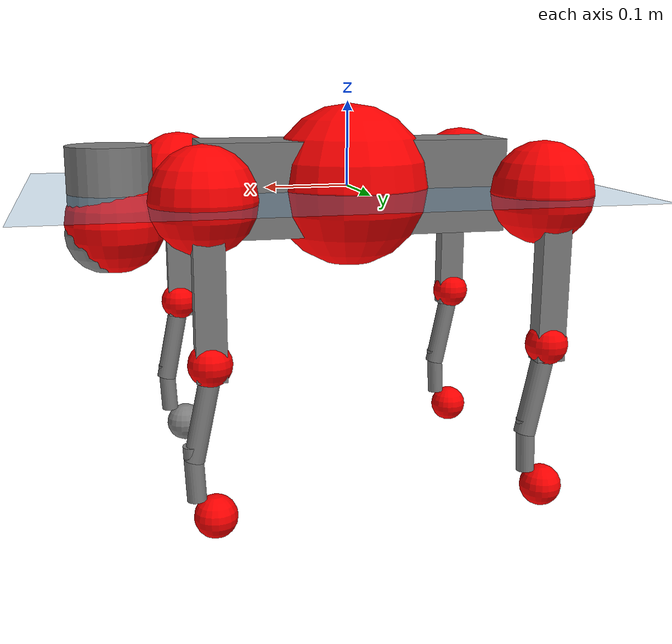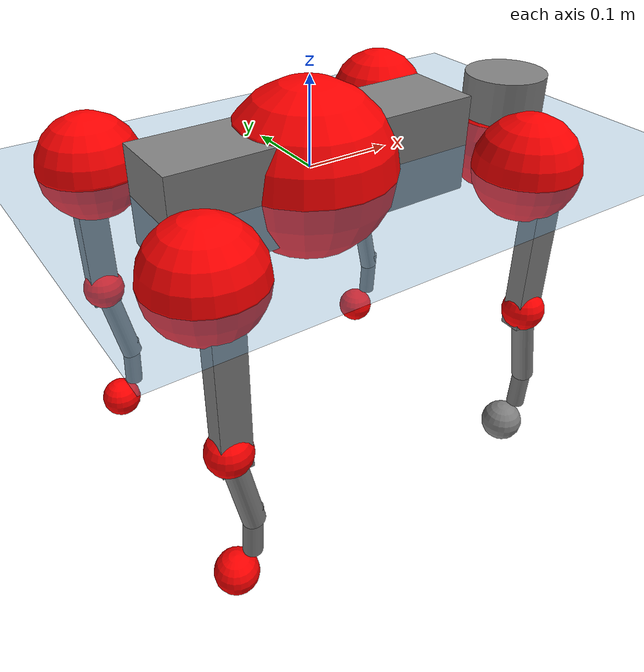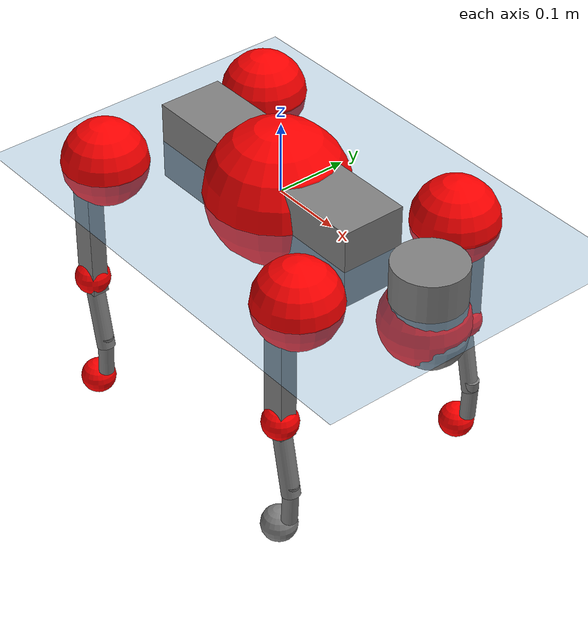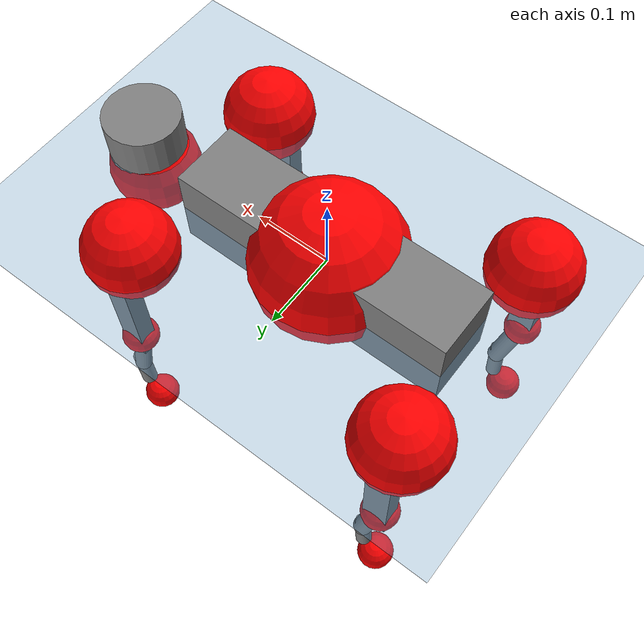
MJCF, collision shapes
<mujoco model="go2">
  <compiler angle="radian" assetdir="assets" balanceinertia="true" inertiafromgeom="false"/>

  <option timestep="0.005" density="1.2" viscosity="2e-05"/>

  <size nkey="1"/>

  <visual>
    <quality shadowsize="8192"/>
    <map shadowclip="0.5"/>
  </visual>

  <default>
    <default class="/">
      <geom contype="0" conaffinity="0" group="1" solref="-1000 -80"/>
      <site size="0.01 0.005 0.005" group="5"/>
      <general forcelimited="true" biastype="affine" gainprm="20" biasprm="0 -20 -0.5"/>
      <default class="go2">
        <joint armature="0.01" damping="0.01" frictionloss="0.2"/>
        <geom condim="1" margin="0.001"/>
        <default class="visual">
          <geom type="mesh" group="2"/>
        </default>
        <default class="collision">
          <geom group="3"/>
          <default class="foot">
            <geom size="0.022 0 0" condim="6" priority="1" friction="0.8 0.02 0.01" solimp="0.015 1 0.022"/>
          </default>
        </default>
        <default class="reward_collision_sphere">
          <geom group="5" rgba="1 0 0 1"/>
        </default>
      </default>
    </default>
  </default>

  <asset>
    <texture type="skybox" colorspace="auto" name="//unnamed_texture_0" builtin="gradient" rgb1="0.95 0.95 0.95" rgb2="0.95 0.95 0.95" width="100" height="600"/>
    <texture type="2d" colorspace="auto" name="texplane" builtin="checker" rgb1="0.345 0.575 0.748" rgb2="0.345 0.575 0.748" markrgb="1 1 1" width="512" height="512"/>
    <material name="MatPlane" class="/" texture="texplane" texuniform="true" texrepeat="2 2" specular="0.9"/>
    <material name="metal" class="/" rgba="0.9 0.95 0.95 1"/>
    <material name="black" class="/" rgba="0 0 0 1"/>
    <material name="white" class="/"/>
    <material name="gray" class="/" rgba="0.671705 0.692426 0.77427 1"/>
    <mesh name="base_0" class="/" file="base_0.obj"/>
    <mesh name="base_1" class="/" file="base_1.obj"/>
    <mesh name="base_2" class="/" file="base_2.obj"/>
    <mesh name="base_3" class="/" file="base_3.obj"/>
    <mesh name="base_4" class="/" file="base_4.obj"/>
    <mesh name="hip_0" class="/" file="hip_0.obj"/>
    <mesh name="hip_1" class="/" file="hip_1.obj"/>
    <mesh name="thigh_0" class="/" file="thigh_0.obj"/>
    <mesh name="thigh_1" class="/" file="thigh_1.obj"/>
    <mesh name="thigh_mirror_0" class="/" file="thigh_mirror_0.obj"/>
    <mesh name="thigh_mirror_1" class="/" file="thigh_mirror_1.obj"/>
    <mesh name="calf_0" class="/" file="calf_0.obj"/>
    <mesh name="calf_1" class="/" file="calf_1.obj"/>
    <mesh name="calf_mirror_0" class="/" file="calf_mirror_0.obj"/>
    <mesh name="calf_mirror_1" class="/" file="calf_mirror_1.obj"/>
    <mesh name="foot" class="/" file="foot.obj"/>
  </asset>

  <worldbody>
    <geom name="floor" class="/" size="100 100 0.125" type="plane" group="0" material="MatPlane"/>
    <light name="toplight_shadow" class="/" pos="0 0 5" dir="0.0990148 0.0990148 -0.990148" type="directional" ambient="0.04 0.04 0.04" diffuse="0.55 0.55 0.55" specular="0.12 0.12 0.12"/>
    <light name="toplight_fill" class="/" pos="0 0 5" dir="0.0990148 0.0990148 -0.990148" type="directional" castshadow="false" ambient="0.04 0.04 0.04" diffuse="0.3 0.3 0.3" specular="0.08 0.08 0.08"/>
    <body name="trunk" childclass="go2" pos="-0.00272284 -0.00193181 0.000321613" quat="0.999999 0.000386092 -0.000940558 -0.000702693">
      <inertial pos="0.0180386 -0.000173496 -0.00482445" quat="0.000745908 0.71442 -0.00206984 0.699713" mass="6.21043" diaginertia="0.102098 0.165451 0.00874347"/>
      <joint name="//unnamed_joint_0" type="free" armature="0" damping="0" frictionloss="0"/>
      <geom name="//unnamed_geom_1" class="visual" material="black" mesh="base_0"/>
      <geom name="//unnamed_geom_2" class="visual" material="black" mesh="base_1"/>
      <geom name="//unnamed_geom_3" class="visual" material="black" mesh="base_2"/>
      <geom name="//unnamed_geom_4" class="visual" material="white" mesh="base_3"/>
      <geom name="//unnamed_geom_5" class="visual" material="gray" mesh="base_4"/>
      <geom name="trunk_1" class="collision" size="0.18245 0.0453458 0.0552879" type="box"/>
      <geom name="trunk_2" class="collision" size="0.0484982 0.0436483" pos="0.281936 0 0.00809594" type="cylinder"/>
      <geom name="trunk_3" class="collision" size="0.0455883" pos="0.28985 0 -0.0485756"/>
      <geom name="//unnamed_geom_9" class="reward_collision_sphere" size="0.0969963"/>
      <geom name="//unnamed_geom_10" class="reward_collision_sphere" size="0.0581978" pos="0.27699 0 -0.0364317"/>
      <site name="imu" pos="-0.0227267 -0.0026126 0.0392907" size="0.00969963"/>
      <camera name="track" pos="0 -2.22209 0" quat="0.707107 0.707107 0 0" mode="trackcom"/>
      <camera name="ego_camera" pos="0.308646 0 0.0364317" quat="-0.5 -0.5 0.5 0.5"/>
      <body name="FL_hip" pos="0.189605 0.0503165 0.00277139" quat="0.999999 0.000124315 -2.56441e-05 -0.00125405">
        <inertial pos="-0.00797308 0.00188557 -0.00100033" quat="0.498884 0.499424 0.504301 0.497364" mass="0.64346" diaginertia="0.000874006 0.00100695 0.000174388"/>
        <joint name="FL_hip_joint" pos="0 0 0" axis="0.999987 -0.0047082 -0.00176609" stiffness="0.00336634" range="-1.05521 0.994719" armature="0.0107989" damping="0" frictionloss="0.193253"/>
        <geom name="//unnamed_geom_11" class="visual" material="metal" mesh="hip_0"/>
        <geom name="//unnamed_geom_12" class="visual" material="gray" mesh="hip_1"/>
        <geom name="//unnamed_geom_13" class="collision" size="0.0446183 0.0193993" pos="0 0.0888836 0" quat="0.707107 0.707107 0 0" type="cylinder"/>
        <geom name="//unnamed_geom_14" class="reward_collision_sphere" size="0.0581978" pos="0 0.0777732 0"/>
        <body name="FL_thigh" pos="-7.14972e-05 0.105168 0.0026201" quat="1 -8.28437e-05 0.000108594 -0.000437134">
          <inertial pos="-0.00101997 -0.0249054 -0.0237335" quat="0.829583 0.084526 -0.0185526 0.551636" mass="1.06139" diaginertia="0.00561585 0.00972869 0.000305985"/>
          <joint name="FL_thigh_joint" pos="0 0 0" axis="-0.0075845 0.99997 -0.00142988" stiffness="0.0126463" range="-1.61679 3.53993" armature="0.0108173" damping="0" frictionloss="0.198738"/>
          <geom name="//unnamed_geom_15" class="visual" material="metal" mesh="thigh_0"/>
          <geom name="//unnamed_geom_16" class="visual" material="gray" mesh="thigh_1"/>
          <geom name="//unnamed_geom_17" class="collision" size="0.103301 0.011882 0.0164894" pos="0 0 -0.0862217" quat="0.707107 0 0.707107 0" type="box"/>
          <body name="FL_calf" pos="0.000526779 -0.00159515 -0.17289" quat="1 0.000576123 0.000238865 -0.000379153">
            <inertial pos="0.00745645 0.000417873 -0.116471" quat="0.707216 0.00962257 -0.0140593 0.706792" mass="0.217762" diaginertia="0.00142646 0.00249848 1.81042e-05"/>
            <joint name="FL_calf_joint" pos="0 0 0" axis="-0.00670978 0.999977 -0.00127614" range="-2.71752 -0.887581" armature="0.00921593" damping="0" frictionloss="0.199978"/>
            <geom name="//unnamed_geom_18" class="visual" material="gray" mesh="calf_0"/>
            <geom name="//unnamed_geom_19" class="visual" material="black" mesh="calf_1"/>
            <geom name="FL_calf0" class="collision" size="0.0116396 0.0581978" pos="0.007914 0 -0.0485756" quat="0.994493 0 -0.104807 0" type="cylinder"/>
            <geom name="//unnamed_geom_21" class="collision" size="0.0106696 0.0315238" pos="0.019785 0 -0.11982" quat="0.999688 0 0.0249974 0" type="cylinder"/>
            <geom name="//unnamed_geom_22" class="visual" pos="0 0 -0.172443" quat="1 0 0 0" material="black" mesh="foot"/>
            <geom name="FL_foot" class="foot" size="0.0165307" pos="-0.0019785 0 -0.172443"/>
            <geom name="//unnamed_geom_24" class="reward_collision_sphere" size="0.0242491"/>
            <geom name="//unnamed_geom_25" class="reward_collision_sphere" size="0.0242491" pos="-0.0019785 0 -0.172443"/>
            <site name="FL_foot" class="foot" pos="-0.0019785 0 -0.172443" size="0.00969963"/>
          </body>
        </body>
      </body>
      <body name="FR_hip" pos="0.192641 -0.0488285 -0.000112907" quat="1 8.71461e-05 -0.000233438 9.34492e-05">
        <inertial pos="-0.00265952 -0.00313468 -0.000485519" quat="0.499954 0.503589 0.499851 0.496581" mass="0.652427" diaginertia="0.000865331 0.0010467 0.000167682"/>
        <joint name="FR_hip_joint" pos="0 0 0" axis="1 -0.000663293 0.000342264" range="-1.02771 1.04518" armature="0.00841012" damping="0.0163331" frictionloss="0.220403"/>
        <geom name="//unnamed_geom_26" class="visual" pos="0 2.62612e-09 1.1264e-07" quat="4.63268e-05 1 0 0" material="metal" mesh="hip_0"/>
        <geom name="//unnamed_geom_27" class="visual" pos="0 4.25725e-09 -2.78601e-07" quat="4.63268e-05 1 0 0" material="gray" mesh="hip_1"/>
        <geom name="//unnamed_geom_28" class="collision" size="0.0446183 0.0193993" pos="0 -0.0888836 0" quat="0.707107 0.707107 0 0" type="cylinder"/>
        <geom name="//unnamed_geom_29" class="reward_collision_sphere" size="0.0581978" pos="0 -0.0777732 0"/>
        <body name="FR_thigh" pos="0.000880717 -0.104569 0.00314227" quat="0.999999 -0.000232423 0.00105391 -0.000893343">
          <inertial pos="-0.00551358 0.0222278 -0.0254605" quat="0.553186 -0.0183254 0.0831931 0.828691" mass="1.02374" diaginertia="0.00566284 0.00995148 0.000298271"/>
          <joint name="FR_thigh_joint" pos="0 0 0" axis="0.00173714 -0.999998 0.00124377" range="-3.4724 1.57463" armature="0.00967335" damping="0.017951" frictionloss="0.193775"/>
          <geom name="//unnamed_geom_30" class="visual" material="metal" mesh="thigh_mirror_0"/>
          <geom name="//unnamed_geom_31" class="visual" material="gray" mesh="thigh_mirror_1"/>
          <geom name="//unnamed_geom_32" class="collision" size="0.103301 0.011882 0.0164894" pos="0 0 -0.0862217" quat="0.707107 0 0.707107 0" type="box"/>
          <body name="FR_calf" pos="0.00144894 -0.00105485 -0.171668" quat="1 3.02711e-05 -0.000115126 -2.85267e-05">
            <inertial pos="0.00699112 0.000759443 -0.113829" quat="0.703226 -0.00582207 -0.00117151 0.710942" mass="0.224282" diaginertia="0.00150373 0.00249008 1.91929e-05"/>
            <joint name="FR_calf_joint" pos="0 0 0" axis="-0.0107342 -0.999942 0.00051088" range="0.838729 2.71776" armature="0.00988789" damping="0.0152342" frictionloss="0.183807"/>
            <geom name="//unnamed_geom_33" class="visual" material="gray" mesh="calf_mirror_0"/>
            <geom name="//unnamed_geom_34" class="visual" material="black" mesh="calf_mirror_1"/>
            <geom name="FR_calf0" class="collision" size="0.0126095 0.0581978" pos="0.00989251 0 -0.0485756" quat="0.995004 0 -0.0998334 0" type="cylinder"/>
            <geom name="//unnamed_geom_36" class="collision" size="0.0106696 0.0315238" pos="0.019785 0 -0.11982" quat="0.999688 0 0.0249974 0" type="cylinder"/>
            <geom name="//unnamed_geom_37" class="visual" pos="0 0 -0.172443" quat="1 0 0 0" material="black" mesh="foot"/>
            <geom name="FR_foot" class="foot" size="0.0245794" pos="-0.0019785 0 -0.172443"/>
            <geom name="//unnamed_geom_39" class="reward_collision_sphere" size="0.0242491"/>
            <geom name="//unnamed_geom_40" class="reward_collision_sphere" size="0.0242491" pos="-0.0019785 0 -0.172443"/>
            <site name="FR_foot" class="foot" pos="-0.0019785 0 -0.172443" size="0.00969963"/>
          </body>
        </body>
      </body>
      <body name="RL_hip" pos="-0.191023 0.0514119 0.00146033" quat="0.999999 -0.000486007 -0.000430637 -0.000991406">
        <inertial pos="0.00821511 0.00304205 -0.000714507" quat="0.505774 0.498261 0.496523 0.499393" mass="0.614331" diaginertia="0.000843857 0.0010424 0.000170196"/>
        <joint name="RL_hip_joint" pos="0 0 0" axis="-0.999887 -0.00961717 -0.0115418" stiffness="0.00677932" range="-1.02494 1.03484" armature="0.0097348" damping="0.0076849" frictionloss="0.190149"/>
        <geom name="//unnamed_geom_41" class="visual" pos="-1.5651e-09 0 -3.06795e-07" quat="4.63268e-05 0 1 0" material="metal" mesh="hip_0"/>
        <geom name="//unnamed_geom_42" class="visual" pos="-2.53721e-09 0 -2.72083e-07" quat="4.63268e-05 0 1 0" material="gray" mesh="hip_1"/>
        <geom name="//unnamed_geom_43" class="collision" size="0.0446183 0.0193993" pos="0 0.0888836 0" quat="0.707107 0.707107 0 0" type="cylinder"/>
        <geom name="//unnamed_geom_44" class="reward_collision_sphere" size="0.0581978" pos="0 0.0777732 0"/>
        <body name="RL_thigh" pos="-0.00243273 0.106201 0.00183976" quat="0.999999 -0.000306998 -0.000186922 -0.00126715">
          <inertial pos="-0.00372406 -0.0236561 -0.0256852" quat="0.823059 0.0887447 -0.0140979 0.560803" mass="1.01678" diaginertia="0.0055648 0.00959096 0.000302674"/>
          <joint name="RL_thigh_joint" pos="0 0 0" axis="0.00203075 0.999942 0.0105622" stiffness="0.00156183" range="-0.511005 4.5286" armature="0.00893785" damping="0" frictionloss="0.199949"/>
          <geom name="//unnamed_geom_45" class="visual" material="metal" mesh="thigh_0"/>
          <geom name="//unnamed_geom_46" class="visual" material="gray" mesh="thigh_1"/>
          <geom name="//unnamed_geom_47" class="collision" size="0.103301 0.011882 0.0164894" pos="0 0 -0.0862217" quat="0.707107 0 0.707107 0" type="box"/>
          <body name="RL_calf" pos="6.44224e-05 -0.00220033 -0.171755" quat="1 2.29052e-05 -1.41305e-05 4.48273e-05">
            <inertial pos="0.00614704 -0.000444606 -0.113369" quat="0.71053 0.00132928 -0.0046319 0.703651" mass="0.218793" diaginertia="0.00141375 0.00248815 1.83281e-05"/>
            <joint name="RL_calf_joint" pos="0 0 0" axis="0.00184878 0.999998 0.000214975" range="-2.70152 -0.835606" armature="0.00969617" damping="0" frictionloss="0.189364"/>
            <geom name="//unnamed_geom_48" class="visual" material="gray" mesh="calf_0"/>
            <geom name="//unnamed_geom_49" class="visual" material="black" mesh="calf_1"/>
            <geom name="RL_calf0" class="collision" size="0.0126095 0.0581978" pos="0.00989251 0 -0.0485756" quat="0.995004 0 -0.0998334 0" type="cylinder"/>
            <geom name="//unnamed_geom_51" class="collision" size="0.0106696 0.0315238" pos="0.019785 0 -0.11982" quat="0.999688 0 0.0249974 0" type="cylinder"/>
            <geom name="//unnamed_geom_52" class="visual" pos="0 0 -0.172443" quat="1 0 0 0" material="black" mesh="foot"/>
            <geom name="RL_foot" class="foot" size="0.0208895" pos="-0.0019785 0 -0.172443"/>
            <geom name="//unnamed_geom_54" class="reward_collision_sphere" size="0.0242491"/>
            <geom name="//unnamed_geom_55" class="reward_collision_sphere" size="0.0242491" pos="-0.0019785 0 -0.172443"/>
            <site name="RL_foot" class="foot" pos="-0.0019785 0 -0.172443" size="0.00969963"/>
          </body>
        </body>
      </body>
      <body name="RR_hip" pos="-0.190682 -0.0541618 0.000465575" quat="0.999999 -0.000298271 0.000742617 0.000611843">
        <inertial pos="0.00509548 0.000432343 -9.34656e-06" quat="0.506104 0.494206 0.50398 0.495605" mass="0.61484" diaginertia="0.000845586 0.00102332 0.000166718"/>
        <joint name="RR_hip_joint" pos="0 0 0" axis="-0.999979 0.00222875 -0.00603314" stiffness="0.00711318" range="-1.06454 1.05222" armature="0.0111532" damping="0.0192437" frictionloss="0.168162"/>
        <geom name="//unnamed_geom_56" class="visual" pos="1.56931e-09 2.62612e-09 -4.19435e-07" quat="2.14617e-09 4.63268e-05 4.63268e-05 -1" material="metal" mesh="hip_0"/>
        <geom name="//unnamed_geom_57" class="visual" pos="2.52678e-09 4.25725e-09 6.51764e-09" quat="2.14617e-09 4.63268e-05 4.63268e-05 -1" material="gray" mesh="hip_1"/>
        <geom name="//unnamed_geom_58" class="collision" size="0.0446183 0.0193993" pos="0 -0.0888836 0" quat="0.707107 0.707107 0 0" type="cylinder"/>
        <geom name="//unnamed_geom_59" class="reward_collision_sphere" size="0.0581978" pos="0 -0.0777732 0"/>
        <body name="RR_thigh" pos="-0.00117859 -0.106948 -0.00305681" quat="1 -8.77363e-05 -0.000524667 -0.000279765">
          <inertial pos="-0.00333572 0.0244149 -0.0261076" quat="0.551246 -0.0216277 0.0851425 0.829705" mass="1.05209" diaginertia="0.00567816 0.00998062 0.000296947"/>
          <joint name="RR_thigh_joint" pos="0 0 0" axis="0.00401594 -0.999992 0.000490813" range="-4.59181 0.552636" armature="0.0101137" damping="0.0203288" frictionloss="0.203879"/>
          <geom name="//unnamed_geom_60" class="visual" material="metal" mesh="thigh_mirror_0"/>
          <geom name="//unnamed_geom_61" class="visual" material="gray" mesh="thigh_mirror_1"/>
          <geom name="//unnamed_geom_62" class="collision" size="0.103301 0.011882 0.0164894" pos="0 0 -0.0862217" quat="0.707107 0 0.707107 0" type="box"/>
          <body name="RR_calf" pos="-0.00253056 0.000813335 -0.17216" quat="1 -9.4099e-05 -0.000137158 0.000432333">
            <inertial pos="0.00858554 0.00114917 -0.113839" quat="0.703053 -0.00394118 0.00291944 0.711121" mass="0.21983" diaginertia="0.00137975 0.00233211 1.8245e-05"/>
            <joint name="RR_calf_joint" pos="0 0 0" axis="0.00619848 -0.999951 0.00766319" range="0.880441 2.77482" armature="0.00845449" damping="0.0110792" frictionloss="0.184095"/>
            <geom name="//unnamed_geom_63" class="visual" material="gray" mesh="calf_mirror_0"/>
            <geom name="//unnamed_geom_64" class="visual" material="black" mesh="calf_mirror_1"/>
            <geom name="RR_calf0" class="collision" size="0.0126095 0.0581978" pos="0.00989251 0 -0.0485756" quat="0.995004 0 -0.0998334 0" type="cylinder"/>
            <geom name="//unnamed_geom_66" class="collision" size="0.0106696 0.0315238" pos="0.019785 0 -0.11982" quat="0.999688 0 0.0249974 0" type="cylinder"/>
            <geom name="//unnamed_geom_67" class="visual" pos="0 0 -0.172443" quat="1 0 0 0" material="black" mesh="foot"/>
            <geom name="RR_foot" class="foot" size="0.023136" pos="-0.0019785 0 -0.172443"/>
            <geom name="//unnamed_geom_69" class="reward_collision_sphere" size="0.0242491"/>
            <geom name="//unnamed_geom_70" class="reward_collision_sphere" size="0.0242491" pos="-0.0019785 0 -0.172443"/>
            <site name="RR_foot" class="foot" pos="-0.0019785 0 -0.172443" size="0.00969963"/>
          </body>
        </body>
      </body>
    </body>
  </worldbody>

  <contact>
    <pair class="/" geom1="floor" geom2="FL_foot" name="//unnamed_contact_0"/>
    <pair class="/" geom1="floor" geom2="FR_foot" name="//unnamed_contact_1"/>
    <pair class="/" geom1="floor" geom2="RL_foot" name="//unnamed_contact_2"/>
    <pair class="/" geom1="floor" geom2="RR_foot" name="//unnamed_contact_3"/>
  </contact>

  <actuator>
    <general name="FL_hip" class="/" joint="FL_hip_joint" forcerange="-22.727 22.727" gainprm="19.4612" biasprm="0 -19.4612 -0.486138"/>
    <general name="FL_thigh" class="/" joint="FL_thigh_joint" forcerange="-22.4283 22.4283" gainprm="19.4612" biasprm="0 -19.4612 -0.486138"/>
    <general name="FL_calf" class="/" joint="FL_calf_joint" forcerange="-43.8242 43.8242" gainprm="19.4612" biasprm="0 -19.4612 -0.486138"/>
    <general name="FR_hip" class="/" joint="FR_hip_joint" forcerange="-25.1673 25.1673" gainprm="19.4612" biasprm="0 -19.4612 -0.486138"/>
    <general name="FR_thigh" class="/" joint="FR_thigh_joint" forcerange="-22.7331 22.7331" gainprm="19.4612" biasprm="0 -19.4612 -0.486138"/>
    <general name="FR_calf" class="/" joint="FR_calf_joint" forcerange="-40.1036 40.1036" gainprm="19.4612" biasprm="0 -19.4612 -0.486138"/>
    <general name="RL_hip" class="/" joint="RL_hip_joint" forcerange="-23.2227 23.2227" gainprm="19.4612" biasprm="0 -19.4612 -0.486138"/>
    <general name="RL_thigh" class="/" joint="RL_thigh_joint" forcerange="-23.1308 23.1308" gainprm="19.4612" biasprm="0 -19.4612 -0.486138"/>
    <general name="RL_calf" class="/" joint="RL_calf_joint" forcerange="-43.3392 43.3392" gainprm="19.4612" biasprm="0 -19.4612 -0.486138"/>
    <general name="RR_hip" class="/" joint="RR_hip_joint" forcerange="-22.5547 22.5547" gainprm="19.4612" biasprm="0 -19.4612 -0.486138"/>
    <general name="RR_thigh" class="/" joint="RR_thigh_joint" forcerange="-23.7448 23.7448" gainprm="19.4612" biasprm="0 -19.4612 -0.486138"/>
    <general name="RR_calf" class="/" joint="RR_calf_joint" forcerange="-48.719 48.719" gainprm="19.4612" biasprm="0 -19.4612 -0.486138"/>
  </actuator>

  <sensor>
    <gyro site="imu" name="imu_angular_velocity"/>
    <velocimeter site="imu" name="imu_linear_velocity"/>
    <framelinvel objtype="site" objname="FL_foot" name="FL_foot_global_linear_velocity"/>
    <framelinvel objtype="site" objname="FR_foot" name="FR_foot_global_linear_velocity"/>
    <framelinvel objtype="site" objname="RL_foot" name="RL_foot_global_linear_velocity"/>
    <framelinvel objtype="site" objname="RR_foot" name="RR_foot_global_linear_velocity"/>
  </sensor>

  <keyframe>
    <key name="home" qpos="0 0 0.325 1 0 0 0 0.1 0.8 -1.5 -0.1 -0.8 1.5 -0.1 0.8 -1.5 0.1 -0.8 1.5"/>
  </keyframe>
</mujoco>
